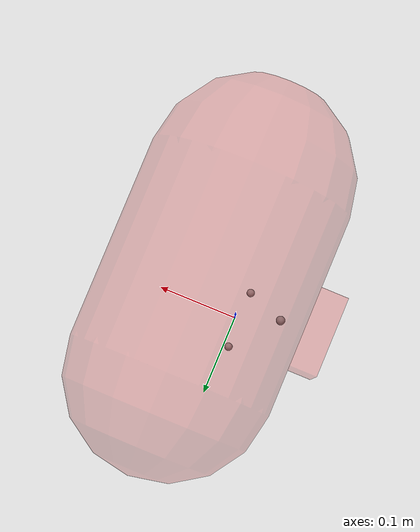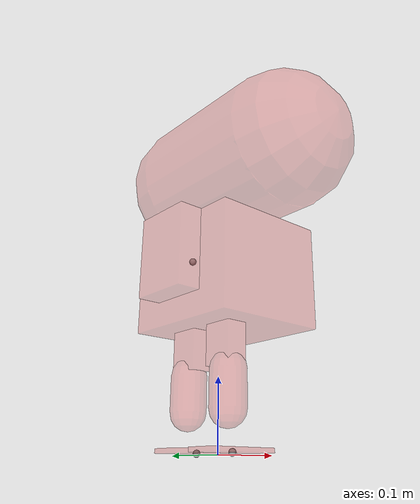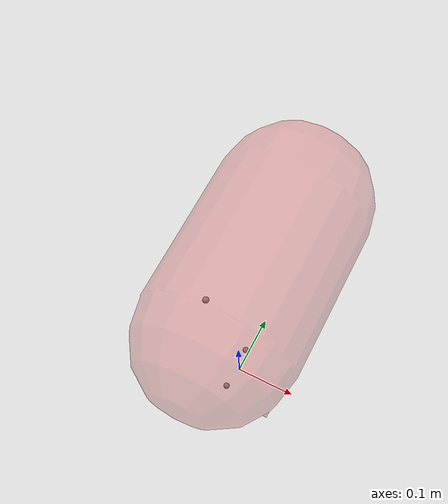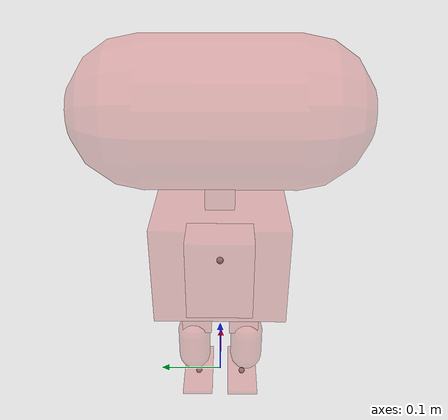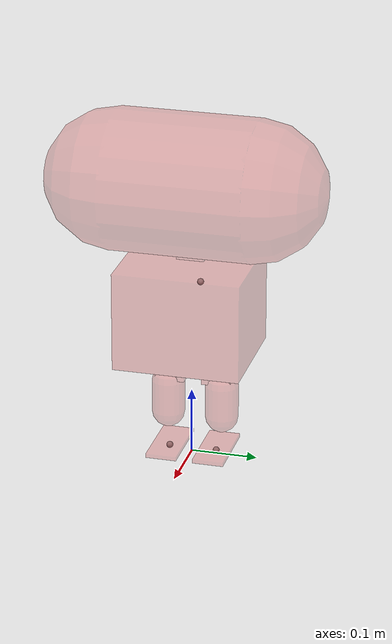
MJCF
<mujoco model="nubzuki_mjx">
  <compiler angle="radian" autolimits="true" balanceinertia="true"/>
  <option timestep="0.002" iterations="4" ls_iterations="4">
    <flag eulerdamp="disable"/>
  </option>

  <default>
    <default class="nubzuki">
      <joint frictionloss="0.1" armature="0.005"/>
      <geom friction="1 0.005 0.0001" rgba=".8 .2 .2 .3"/>
    </default>
    <default class="sts3215">
      <joint damping="0.56" frictionloss="0.068" armature="0.027"/>
      <position kp="13.37" kv="0" forcerange="-3.23 3.23"/>
    </default>
  </default>

  <worldbody>
    <body name="base" pos="0 0 0.205" childclass="nubzuki">
      <freejoint name="floating_base"/>
      <body name="trunk">
        <inertial pos="-0.028668113 -0.000057115 0.050866204" mass="1.006"
                  fullinertia="0.002751293 0.003694551 0.003894216 -0.000007306 0.000537228 0.000001921"/>
        <geom name="trunk_collision" type="box"
              pos="0.012 0 0.035" size="0.085 0.095 0.075"
              contype="2" conaffinity="9"/>
        <geom name="trunk_rear_collision" type="box"
              pos="-0.07947 -0.000025 0.052885"
              size="0.02727 0.044755 0.057815"
              contype="2" conaffinity="9"/>
        <site name="imu" pos="-0.05 0 0.05"/>

        <body name="left_hip_yaw_link" pos="-0.019 0.035 0.048440939">
          <joint name="left_hip_yaw" type="hinge" axis="0 0 -1"
                 range="-0.3490658504 0.3490658504" class="sts3215"/>
          <inertial pos="0.005494236 0 -0.019285129" mass="0.0193"
                    fullinertia="0.000005379 0.000011693 0.000007883 0 0.000001201 0"/>
          <geom name="left_hip_yaw_collision" type="box"
                pos="0.004 0 -0.0235" size="0.028 0.020 0.025"
                contype="4" conaffinity="17"/>
          <body name="left_hip_roll_link" pos="0.02725 0 -0.030609661">
            <joint name="left_hip_roll" type="hinge" axis="1 0 0"
                   range="-0.1745329252 0.3490658504" class="sts3215"/>
            <inertial pos="-0.004783426 0.000521080 -0.011972130" mass="0.135"
                      fullinertia="0.000044862 0.000120261 0.000106315 0.000001573 0.000006579 -0.000000623"/>
            <geom name="left_hip_roll_collision" type="box"
                  pos="-0.0053 0 -0.0127" size="0.043 0.020 0.023"
                  contype="4" conaffinity="17"/>
            <body name="left_hip_pitch_link" pos="-0.027153102 0.017150027 -0.025000339">
              <joint name="left_hip_pitch" type="hinge" axis="0 -1 0"
                     range="-0.3490658504 0.3490658504" class="sts3215"/>
              <inertial pos="0.000001204 -0.016201439 -0.048860006" mass="0.0775"
                        fullinertia="0.000072796 0.000062727 0.000021265 0 0 -0.000000345"/>
              <geom name="left_hip_pitch_collision" type="box"
                    pos="0 -0.016075 -0.03888" size="0.01535 0.022425 0.04988"
                    contype="4" conaffinity="17"/>
              <body name="left_knee_link" pos="0 0.00025 -0.07865">
                <joint name="left_knee" type="hinge" axis="0 -1 0"
                       range="-0.7853981634 0" class="sts3215"/>
                <inertial pos="0.000272761 -0.015322589 -0.042877828" mass="0.128"
                          fullinertia="0.000135073 0.000116238 0.000059553 0.000000299 -0.000001519 -0.000001952"/>
                <geom name="left_knee_collision" type="capsule"
                      fromto="0 -0.011 -0.015 0 -0.011 -0.065" size="0.025"
                      contype="4" conaffinity="17"/>
                <body name="left_foot_link" pos="0 0.0001 -0.07865">
                  <joint name="left_ankle" type="hinge" axis="0 -1 0"
                         range="-0.5235987756 0.5235987756" class="sts3215"/>
                  <inertial pos="0.010202836 -0.016330062 -0.021841923" mass="0.076"
                            fullinertia="0.000024528 0.000062144 0.000068036 -0.000000193 0.000003116 0.000000495"/>
                  <geom name="left_foot_collision" type="box"
                        pos="0.0124 -0.0163 -0.0358" size="0.052 0.0235 0.003"
                        contype="4" conaffinity="17"/>
                  <site name="left_foot" pos="0.0124 -0.0163 -0.0388"/>
                </body>
              </body>
            </body>
          </body>
        </body>

        <body name="right_hip_yaw_link" pos="-0.019 -0.035 0.048440939">
          <joint name="right_hip_yaw" type="hinge" axis="0 0 -1"
                 range="-0.3490658504 0.3490658504" class="sts3215"/>
          <inertial pos="0.005494261 0 -0.019285140" mass="0.0193"
                    fullinertia="0.000005379 0.000011693 0.000007883 0 0.000001201 0"/>
          <geom name="right_hip_yaw_collision" type="box"
                pos="0.004 0 -0.0235" size="0.028 0.020 0.025"
                contype="16" conaffinity="5"/>
          <body name="right_hip_roll_link" pos="0.02725 0 -0.030609661">
            <joint name="right_hip_roll" type="hinge" axis="-1 0 0"
                   range="-0.1745329252 0.3490658504" class="sts3215"/>
            <inertial pos="-0.004783426 -0.000521099 -0.011972131" mass="0.135"
                      fullinertia="0.000044862 0.000120261 0.000106315 -0.000001573 0.000006579 0.000000623"/>
            <geom name="right_hip_roll_collision" type="box"
                  pos="-0.0053 0 -0.0127" size="0.043 0.020 0.023"
                  contype="16" conaffinity="5"/>
            <body name="right_hip_pitch_link" pos="-0.027153100 -0.017150025 -0.025000339">
              <joint name="right_hip_pitch" type="hinge" axis="0 -1 0"
                     range="-0.3490658504 0.3490658504" class="sts3215"/>
              <inertial pos="0.000001340 0.014045341 -0.050522638" mass="0.0775"
                        fullinertia="0.000072117 0.000063964 0.000019348 0 0 0.000003276"/>
              <geom name="right_hip_pitch_collision" type="box"
                    pos="0 0.016075 -0.03888" size="0.01535 0.022425 0.04988"
                    contype="16" conaffinity="5"/>
              <body name="right_knee_link" pos="0 -0.00025 -0.07865">
                <joint name="right_knee" type="hinge" axis="0 -1 0"
                       range="-0.7853981634 0" class="sts3215"/>
                <inertial pos="0.000272765 0.015322595 -0.042877927" mass="0.128"
                          fullinertia="0.000135074 0.000116239 0.000059553 -0.000000299 -0.000001519 0.000001953"/>
                <geom name="right_knee_collision" type="capsule"
                      fromto="0 0.011 -0.015 0 0.011 -0.065" size="0.025"
                      contype="16" conaffinity="5"/>
                <body name="right_foot_link" pos="0 -0.0001 -0.07865">
                  <joint name="right_ankle" type="hinge" axis="0 -1 0"
                         range="-0.5235987756 0.5235987756" class="sts3215"/>
                  <inertial pos="0.010202834 0.016330062 -0.021841918" mass="0.076"
                            fullinertia="0.000024528 0.000062144 0.000068036 0.000000193 0.000003116 -0.000000495"/>
                  <geom name="right_foot_collision" type="box"
                        pos="0.0124 0.0163 -0.0358" size="0.052 0.0235 0.003"
                        contype="16" conaffinity="5"/>
                  <site name="right_foot" pos="0.0124 0.0163 -0.0388"/>
                </body>
              </body>
            </body>
          </body>
        </body>

        <body name="neck_pitch_link" pos="0.001 0.01665 0.090000939">
          <joint name="neck_pitch" type="hinge" axis="0 1 0"
                 range="-0.3490658504 0.3490658504" class="sts3215"/>
          <inertial pos="-0.000001451 -0.015262563 0.041314864" mass="0.0682"
                    fullinertia="0.000050093 0.000040868 0.000018902 0 0 0.000001426"/>
          <geom name="neck_pitch_collision" type="box"
                pos="0 -0.0160 0.0326" size="0.014 0.021 0.042"
                contype="8" conaffinity="1"/>
          <body name="head_pitch_link" pos="0 0 0.066">
            <joint name="head_pitch" type="hinge" axis="0 1 0"
                   range="-0.3490658504 0.2617993878" class="sts3215"/>
            <inertial pos="-0.003394613 -0.015619216 0.022855421" mass="0.015"
                      fullinertia="0.000009922 0.000008466 0.000003582 -0.000000040 0.000000691 0.000000286"/>
            <geom name="head_pitch_collision" type="box"
                  pos="-0.005 -0.0160 0.025" size="0.015 0.021 0.034"
                  contype="8" conaffinity="1"/>
            <body name="head_yaw_link" pos="0 -0.01655 0.05245">
              <joint name="head_yaw" type="hinge" axis="0 0 1"
                     range="-0.6108652382 0.6108652382" class="sts3215"/>
              <inertial pos="0.010874899 0.000001097 -0.017252789" mass="0.074"
                        fullinertia="0.000022571 0.000068161 0.000068094 0 -0.000004369 0"/>
              <geom name="head_yaw_collision" type="box"
                    pos="-0.003 0 -0.0156" size="0.042 0.038 0.020"
                    contype="8" conaffinity="1"/>
              <body name="head_roll_link" pos="-0.047 0 -0.0146">
                <joint name="head_roll" type="hinge" axis="-1 0 0"
                       range="-0.2094395102 0.2094395102" class="sts3215"/>
                <inertial pos="0.096074233 -0.001310789 0.048808000" mass="0.831"
                          fullinertia="0.009768271 0.006244714 0.011096110 0.000116288 -0.000265823 -0.000023347"/>
                <geom name="head_collision" type="capsule"
                      fromto="0.079 -0.105 0.041 0.079 0.105 0.041"
                      size="0.105"
                      contype="8" conaffinity="3"/>
              </body>
            </body>
          </body>
        </body>
      </body>
    </body>
  </worldbody>

  <sensor>
    <gyro site="imu" name="gyro"/>
    <velocimeter site="imu" name="local_linvel"/>
    <accelerometer site="imu" name="accelerometer"/>
    <framezaxis objtype="site" objname="imu" name="upvector"/>
    <framelinvel objtype="site" objname="imu" name="global_linvel"/>
    <frameangvel objtype="site" objname="imu" name="global_angvel"/>
    <framelinvel objtype="site" objname="right_foot" name="right_foot_global_linvel"/>
    <framelinvel objtype="site" objname="left_foot" name="left_foot_global_linvel"/>
    <framepos objtype="site" objname="left_foot" name="left_foot_pos"/>
    <framepos objtype="site" objname="right_foot" name="right_foot_pos"/>
  </sensor>

  <actuator>
    <position name="left_hip_yaw" joint="left_hip_yaw" class="sts3215"/>
    <position name="left_hip_roll" joint="left_hip_roll" class="sts3215"/>
    <position name="left_hip_pitch" joint="left_hip_pitch" class="sts3215"/>
    <position name="left_knee" joint="left_knee" class="sts3215"/>
    <position name="left_ankle" joint="left_ankle" class="sts3215"/>
    <position name="neck_pitch" joint="neck_pitch" class="sts3215"/>
    <position name="head_pitch" joint="head_pitch" class="sts3215"/>
    <position name="head_yaw" joint="head_yaw" class="sts3215"/>
    <position name="head_roll" joint="head_roll" class="sts3215"/>
    <position name="right_hip_yaw" joint="right_hip_yaw" class="sts3215"/>
    <position name="right_hip_roll" joint="right_hip_roll" class="sts3215"/>
    <position name="right_hip_pitch" joint="right_hip_pitch" class="sts3215"/>
    <position name="right_knee" joint="right_knee" class="sts3215"/>
    <position name="right_ankle" joint="right_ankle" class="sts3215"/>
  </actuator>
</mujoco>
